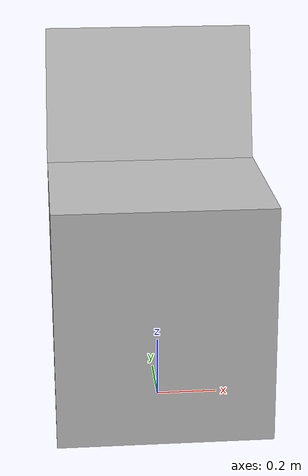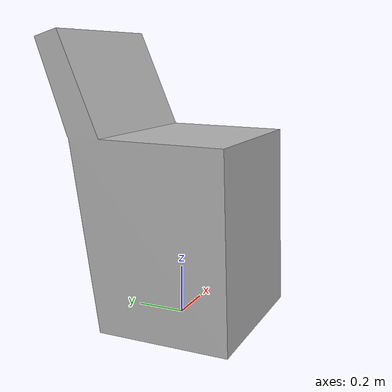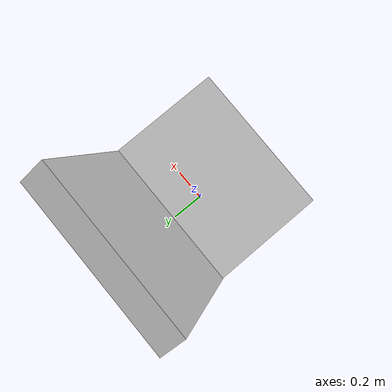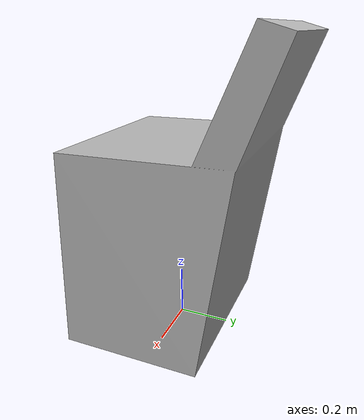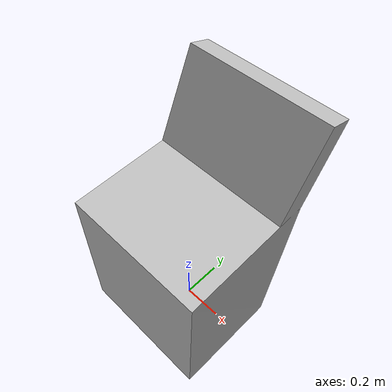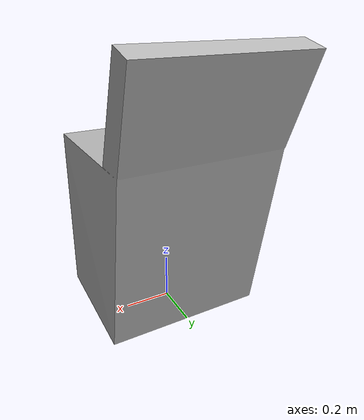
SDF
<?xml version='1.0' encoding='utf-8'?>
<sdf version="1.6">
  <model name="VisitorChair">
   <static>true</static>
    <link name="body">
      <pose>0 0 0 0 0 0</pose>

      <visual name="visual">
        <geometry>
          <mesh>
            <uri>model://VisitorChair/meshes/VisitorChair.obj</uri>
          </mesh>
        </geometry>
      </visual>

      <collision name="collision">
        <geometry>
          <mesh>
            <uri>model://VisitorChair/meshes/VisitorChair_Col.dae</uri>
          </mesh>
        </geometry>
      </collision>

    </link>
  </model>
</sdf>
